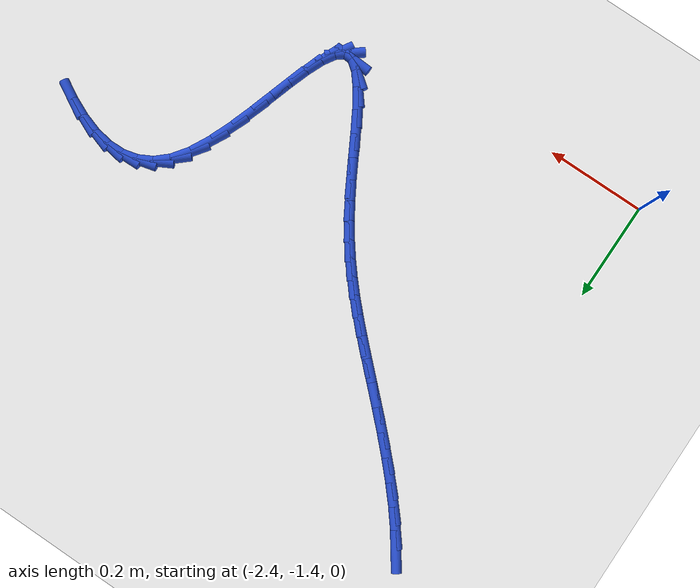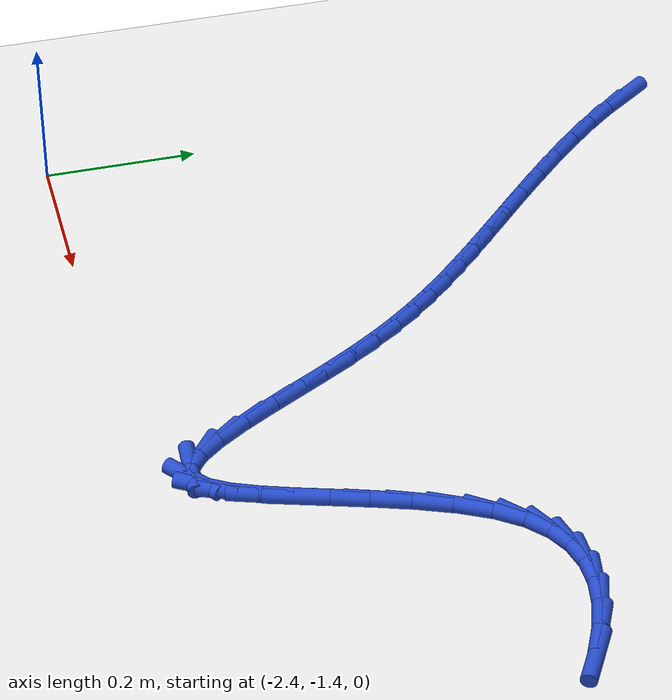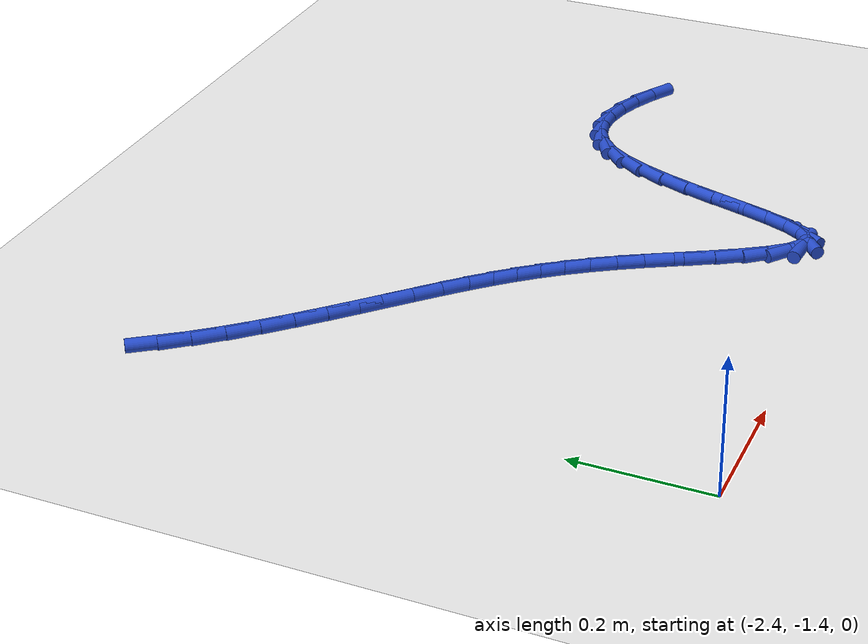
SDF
<sdf version="1.6">
 <world name="default">
  <model name="ground_plane">
   <static>1</static>
   <link name="link">
    <collision name="collision">
     <geometry><plane><normal>0 0 1</normal><size>100 100</size></plane></geometry>
     <surface><friction><ode><mu>100</mu><mu2>50</mu2></ode></friction></surface>
    </collision>
    <visual name="visual">
     <cast_shadows>0</cast_shadows>
     <geometry><plane><normal>0 0 1</normal><size>100 100</size></plane></geometry>
     <material>
      <script><uri>file://media/materials/scripts/gazebo.material</uri><name>Gazebo/WhiteGlow</name></script>
     </material>
    </visual>
   </link>
  </model>
  <model name="line">
   <link name="link_150">
    <pose>-2.373252106462421 -0.6004573252086611 0.01 0 1.57 -0.9528831710784258</pose>
    <collision name="collision">
     <geometry><cylinder><radius>0.01</radius><length>0.08</length></cylinder></geometry>
    </collision>
    <visual name="visual">
     <material>
      <script><name>Gazebo/Blue</name><uri>file://media/materials/scripts/gazebo.material</uri></script>
     </material>
     <geometry><cylinder><radius>0.01</radius><length>0.08</length></cylinder></geometry>
    </visual>
   </link>
   <link name="link_151">
    <pose>-2.3484162396697954 -0.6353998560284155 0.01 0 1.57 -0.8935420552274017</pose>
    <collision name="collision">
     <geometry><cylinder><radius>0.01</radius><length>0.08</length></cylinder></geometry>
    </collision>
    <visual name="visual">
     <material>
      <script><name>Gazebo/Blue</name><uri>file://media/materials/scripts/gazebo.material</uri></script>
     </material>
     <geometry><cylinder><radius>0.01</radius><length>0.08</length></cylinder></geometry>
    </visual>
   </link>
   <link name="link_152">
    <pose>-2.3201256055269526 -0.6705815157713206 0.01 0 1.57 -0.8489820435934535</pose>
    <collision name="collision">
     <geometry><cylinder><radius>0.01</radius><length>0.08</length></cylinder></geometry>
    </collision>
    <visual name="visual">
     <material>
      <script><name>Gazebo/Blue</name><uri>file://media/materials/scripts/gazebo.material</uri></script>
     </material>
     <geometry><cylinder><radius>0.01</radius><length>0.08</length></cylinder></geometry>
    </visual>
   </link>
   <link name="link_153">
    <pose>-2.289208676700361 -0.7057030971934708 0.01 0 1.57 -0.8157331738352898</pose>
    <collision name="collision">
     <geometry><cylinder><radius>0.01</radius><length>0.08</length></cylinder></geometry>
    </collision>
    <visual name="visual">
     <material>
      <script><name>Gazebo/Blue</name><uri>file://media/materials/scripts/gazebo.material</uri></script>
     </material>
     <geometry><cylinder><radius>0.01</radius><length>0.08</length></cylinder></geometry>
    </visual>
   </link>
   <link name="link_154">
    <pose>-2.2564939258564882 -0.7404653930509605 0.01 0 1.57 -0.7915894965317337</pose>
    <collision name="collision">
     <geometry><cylinder><radius>0.01</radius><length>0.08</length></cylinder></geometry>
    </collision>
    <visual name="visual">
     <material>
      <script><name>Gazebo/Blue</name><uri>file://media/materials/scripts/gazebo.material</uri></script>
     </material>
     <geometry><cylinder><radius>0.01</radius><length>0.08</length></cylinder></geometry>
    </visual>
   </link>
   <link name="link_155">
    <pose>-2.222809825661802 -0.7745691960998845 0.01 0 1.57 -0.7752616890763121</pose>
    <collision name="collision">
     <geometry><cylinder><radius>0.01</radius><length>0.08</length></cylinder></geometry>
    </collision>
    <visual name="visual">
     <material>
      <script><name>Gazebo/Blue</name><uri>file://media/materials/scripts/gazebo.material</uri></script>
     </material>
     <geometry><cylinder><radius>0.01</radius><length>0.08</length></cylinder></geometry>
    </visual>
   </link>
   <link name="link_156">
    <pose>-2.1889848487827703 -0.807715299096337 0.01 0 1.57 -0.7662055194218836</pose>
    <collision name="collision">
     <geometry><cylinder><radius>0.01</radius><length>0.08</length></cylinder></geometry>
    </collision>
    <visual name="visual">
     <material>
      <script><name>Gazebo/Blue</name><uri>file://media/materials/scripts/gazebo.material</uri></script>
     </material>
     <geometry><cylinder><radius>0.01</radius><length>0.08</length></cylinder></geometry>
    </visual>
   </link>
   <link name="link_157">
    <pose>-2.1558474678858612 -0.8396044947964126 0.01 0 1.57 -0.764607943255147</pose>
    <collision name="collision">
     <geometry><cylinder><radius>0.01</radius><length>0.08</length></cylinder></geometry>
    </collision>
    <visual name="visual">
     <material>
      <script><name>Gazebo/Blue</name><uri>file://media/materials/scripts/gazebo.material</uri></script>
     </material>
     <geometry><cylinder><radius>0.01</radius><length>0.08</length></cylinder></geometry>
    </visual>
   </link>
   <link name="link_158">
    <pose>-2.1242261556375435 -0.8699375759562062 0.01 0 1.57 -0.7713608393779885</pose>
    <collision name="collision">
     <geometry><cylinder><radius>0.01</radius><length>0.08</length></cylinder></geometry>
    </collision>
    <visual name="visual">
     <material>
      <script><name>Gazebo/Blue</name><uri>file://media/materials/scripts/gazebo.material</uri></script>
     </material>
     <geometry><cylinder><radius>0.01</radius><length>0.08</length></cylinder></geometry>
    </visual>
   </link>
   <link name="link_159">
    <pose>-2.0948640516488317 -0.898486707765192 0.01 0 1.57 -0.7864312028950791</pose>
    <collision name="collision">
     <geometry><cylinder><radius>0.01</radius><length>0.08</length></cylinder></geometry>
    </collision>
    <visual name="visual">
     <material>
      <script><name>Gazebo/Blue</name><uri>file://media/materials/scripts/gazebo.material</uri></script>
     </material>
     <geometry><cylinder><radius>0.01</radius><length>0.08</length></cylinder></geometry>
    </visual>
   </link>
   <link name="link_160">
    <pose>-2.0677614090117453 -0.9256454045290137 0.01 0 1.57 -0.8096889409405165</pose>
    <collision name="collision">
     <geometry><cylinder><radius>0.01</radius><length>0.08</length></cylinder></geometry>
    </collision>
    <visual name="visual">
     <material>
      <script><name>Gazebo/Blue</name><uri>file://media/materials/scripts/gazebo.material</uri></script>
     </material>
     <geometry><cylinder><radius>0.01</radius><length>0.08</length></cylinder></geometry>
    </visual>
   </link>
   <link name="link_161">
    <pose>-2.0425358999949474 -0.9521271705523009 0.01 0 1.57 -0.840801102469207</pose>
    <collision name="collision">
     <geometry><cylinder><radius>0.01</radius><length>0.08</length></cylinder></geometry>
    </collision>
    <visual name="visual">
     <material>
      <script><name>Gazebo/Blue</name><uri>file://media/materials/scripts/gazebo.material</uri></script>
     </material>
     <geometry><cylinder><radius>0.01</radius><length>0.08</length></cylinder></geometry>
    </visual>
   </link>
   <link name="link_162">
    <pose>-2.0188020328541074 -0.9786481565151717 0.01 0 1.57 -0.8782816312573634</pose>
    <collision name="collision">
     <geometry><cylinder><radius>0.01</radius><length>0.08</length></cylinder></geometry>
    </collision>
    <visual name="visual">
     <material>
      <script><name>Gazebo/Blue</name><uri>file://media/materials/scripts/gazebo.material</uri></script>
     </material>
     <geometry><cylinder><radius>0.01</radius><length>0.08</length></cylinder></geometry>
    </visual>
   </link>
   <link name="link_163">
    <pose>-1.9961743158448948 -1.0059245130977446 0.01 0 1.57 -0.9196334773277048</pose>
    <collision name="collision">
     <geometry><cylinder><radius>0.01</radius><length>0.08</length></cylinder></geometry>
    </collision>
    <visual name="visual">
     <material>
      <script><name>Gazebo/Blue</name><uri>file://media/materials/scripts/gazebo.material</uri></script>
     </material>
     <geometry><cylinder><radius>0.01</radius><length>0.08</length></cylinder></geometry>
    </visual>
   </link>
   <link name="link_164">
    <pose>-1.9742672572229785 -1.034672390980138 0.01 0 1.57 -0.9618731485182537</pose>
    <collision name="collision">
     <geometry><cylinder><radius>0.01</radius><length>0.08</length></cylinder></geometry>
    </collision>
    <visual name="visual">
     <material>
      <script><name>Gazebo/Blue</name><uri>file://media/materials/scripts/gazebo.material</uri></script>
     </material>
     <geometry><cylinder><radius>0.01</radius><length>0.08</length></cylinder></geometry>
    </visual>
   </link>
   <link name="link_165">
    <pose>-1.9526953652440289 -1.065607940842471 0.01 0 1.57 -1.002216841543725</pose>
    <collision name="collision">
     <geometry><cylinder><radius>0.01</radius><length>0.08</length></cylinder></geometry>
    </collision>
    <visual name="visual">
     <material>
      <script><name>Gazebo/Blue</name><uri>file://media/materials/scripts/gazebo.material</uri></script>
     </material>
     <geometry><cylinder><radius>0.01</radius><length>0.08</length></cylinder></geometry>
    </visual>
   </link>
   <link name="link_166">
    <pose>-1.9310731481637153 -1.0994473133648615 0.01 0 1.57 -1.0385716733011656</pose>
    <collision name="collision">
     <geometry><cylinder><radius>0.01</radius><length>0.08</length></cylinder></geometry>
    </collision>
    <visual name="visual">
     <material>
      <script><name>Gazebo/Blue</name><uri>file://media/materials/scripts/gazebo.material</uri></script>
     </material>
     <geometry><cylinder><radius>0.01</radius><length>0.08</length></cylinder></geometry>
    </visual>
   </link>
   <link name="link_167">
    <pose>-1.9090164097806421 -1.1369008544767587 0.01 0 1.57 -1.0633929357914582</pose>
    <collision name="collision">
     <geometry><cylinder><radius>0.01</radius><length>0.08</length></cylinder></geometry>
    </collision>
    <visual name="visual">
     <material>
      <script><name>Gazebo/Blue</name><uri>file://media/materials/scripts/gazebo.material</uri></script>
     </material>
     <geometry><cylinder><radius>0.01</radius><length>0.08</length></cylinder></geometry>
    </visual>
   </link>
   <link name="link_168">
    <pose>-1.886376534253599 -1.177623379474849 0.01 0 1.57 -1.0659244511532624</pose>
    <collision name="collision">
     <geometry><cylinder><radius>0.01</radius><length>0.08</length></cylinder></geometry>
    </collision>
    <visual name="visual">
     <material>
      <script><name>Gazebo/Blue</name><uri>file://media/materials/scripts/gazebo.material</uri></script>
     </material>
     <geometry><cylinder><radius>0.01</radius><length>0.08</length></cylinder></geometry>
    </visual>
   </link>
   <link name="link_169">
    <pose>-1.8635125122156426 -1.218995345205227 0.01 0 1.57 -1.0455651673994772</pose>
    <collision name="collision">
     <geometry><cylinder><radius>0.01</radius><length>0.08</length></cylinder></geometry>
    </collision>
    <visual name="visual">
     <material>
      <script><name>Gazebo/Blue</name><uri>file://media/materials/scripts/gazebo.material</uri></script>
     </material>
     <geometry><cylinder><radius>0.01</radius><length>0.08</length></cylinder></geometry>
    </visual>
   </link>
   <link name="link_170">
    <pose>-1.840849310356929 -1.258101599197318 0.01 0 1.57 -0.994713094891718</pose>
    <collision name="collision">
     <geometry><cylinder><radius>0.01</radius><length>0.08</length></cylinder></geometry>
    </collision>
    <visual name="visual">
     <material>
      <script><name>Gazebo/Blue</name><uri>file://media/materials/scripts/gazebo.material</uri></script>
     </material>
     <geometry><cylinder><radius>0.01</radius><length>0.08</length></cylinder></geometry>
    </visual>
   </link>
   <link name="link_171">
    <pose>-1.8188118953676125 -1.2920269889805458 0.01 0 1.57 -0.8884728741638233</pose>
    <collision name="collision">
     <geometry><cylinder><radius>0.01</radius><length>0.08</length></cylinder></geometry>
    </collision>
    <visual name="visual">
     <material>
      <script><name>Gazebo/Blue</name><uri>file://media/materials/scripts/gazebo.material</uri></script>
     </material>
     <geometry><cylinder><radius>0.01</radius><length>0.08</length></cylinder></geometry>
    </visual>
   </link>
   <link name="link_172">
    <pose>-1.7978252339378493 -1.3178563620843355 0.01 0 1.57 -0.6495418686351415</pose>
    <collision name="collision">
     <geometry><cylinder><radius>0.01</radius><length>0.08</length></cylinder></geometry>
    </collision>
    <visual name="visual">
     <material>
      <script><name>Gazebo/Blue</name><uri>file://media/materials/scripts/gazebo.material</uri></script>
     </material>
     <geometry><cylinder><radius>0.01</radius><length>0.08</length></cylinder></geometry>
    </visual>
   </link>
   <link name="link_173">
    <pose>-1.7783142927577935 -1.3326745660381107 0.01 0 1.57 -0.05997570481074168</pose>
    <collision name="collision">
     <geometry><cylinder><radius>0.01</radius><length>0.08</length></cylinder></geometry>
    </collision>
    <visual name="visual">
     <material>
      <script><name>Gazebo/Blue</name><uri>file://media/materials/scripts/gazebo.material</uri></script>
     </material>
     <geometry><cylinder><radius>0.01</radius><length>0.08</length></cylinder></geometry>
    </visual>
   </link>
   <link name="link_174">
    <pose>-1.760674573048976 -1.3337337910057852 0.01 0 1.57 0.6745242304990869</pose>
    <collision name="collision">
     <geometry><cylinder><radius>0.01</radius><length>0.08</length></cylinder></geometry>
    </collision>
    <visual name="visual">
     <material>
      <script><name>Gazebo/Blue</name><uri>file://media/materials/scripts/gazebo.material</uri></script>
     </material>
     <geometry><cylinder><radius>0.01</radius><length>0.08</length></cylinder></geometry>
    </visual>
   </link>
   <link name="link_175">
    <pose>-1.7448146697424232 -1.3210515041078377 0.01 0 1.57 1.0276383787436885</pose>
    <collision name="collision">
     <geometry><cylinder><radius>0.01</radius><length>0.08</length></cylinder></geometry>
    </collision>
    <visual name="visual">
     <material>
      <script><name>Gazebo/Blue</name><uri>file://media/materials/scripts/gazebo.material</uri></script>
     </material>
     <geometry><cylinder><radius>0.01</radius><length>0.08</length></cylinder></geometry>
    </visual>
   </link>
   <link name="link_176">
    <pose>-1.7302433330352203 -1.296916002500289 0.01 0 1.57 1.1775777474080007</pose>
    <collision name="collision">
     <geometry><cylinder><radius>0.01</radius><length>0.08</length></cylinder></geometry>
    </collision>
    <visual name="visual">
     <material>
      <script><name>Gazebo/Blue</name><uri>file://media/materials/scripts/gazebo.material</uri></script>
     </material>
     <geometry><cylinder><radius>0.01</radius><length>0.08</length></cylinder></geometry>
    </visual>
   </link>
   <link name="link_177">
    <pose>-1.7164574720648407 -1.263682832027294 0.01 0 1.57 1.2450351712946282</pose>
    <collision name="collision">
     <geometry><cylinder><radius>0.01</radius><length>0.08</length></cylinder></geometry>
    </collision>
    <visual name="visual">
     <material>
      <script><name>Gazebo/Blue</name><uri>file://media/materials/scripts/gazebo.material</uri></script>
     </material>
     <geometry><cylinder><radius>0.01</radius><length>0.08</length></cylinder></geometry>
    </visual>
   </link>
   <link name="link_178">
    <pose>-1.7029539959687598 -1.2237075385330065 0.01 0 1.57 1.2707665496543994</pose>
    <collision name="collision">
     <geometry><cylinder><radius>0.01</radius><length>0.08</length></cylinder></geometry>
    </collision>
    <visual name="visual">
     <material>
      <script><name>Gazebo/Blue</name><uri>file://media/materials/scripts/gazebo.material</uri></script>
     </material>
     <geometry><cylinder><radius>0.01</radius><length>0.08</length></cylinder></geometry>
    </visual>
   </link>
   <link name="link_179">
    <pose>-1.689229813884453 -1.1793456678615837 0.01 0 1.57 1.2688897531425274</pose>
    <collision name="collision">
     <geometry><cylinder><radius>0.01</radius><length>0.08</length></cylinder></geometry>
    </collision>
    <visual name="visual">
     <material>
      <script><name>Gazebo/Blue</name><uri>file://media/materials/scripts/gazebo.material</uri></script>
     </material>
     <geometry><cylinder><radius>0.01</radius><length>0.08</length></cylinder></geometry>
    </visual>
   </link>
   <link name="link_180">
    <pose>-1.6747818349493946 -1.1329527658571794 0.01 0 1.57 1.2428318397016918</pose>
    <collision name="collision">
     <geometry><cylinder><radius>0.01</radius><length>0.08</length></cylinder></geometry>
    </collision>
    <visual name="visual">
     <material>
      <script><name>Gazebo/Blue</name><uri>file://media/materials/scripts/gazebo.material</uri></script>
     </material>
     <geometry><cylinder><radius>0.01</radius><length>0.08</length></cylinder></geometry>
    </visual>
   </link>
   <link name="link_181">
    <pose>-1.659106968301059 -1.0868843783639488 0.01 0 1.57 1.1893065516251207</pose>
    <collision name="collision">
     <geometry><cylinder><radius>0.01</radius><length>0.08</length></cylinder></geometry>
    </collision>
    <visual name="visual">
     <material>
      <script><name>Gazebo/Blue</name><uri>file://media/materials/scripts/gazebo.material</uri></script>
     </material>
     <geometry><cylinder><radius>0.01</radius><length>0.08</length></cylinder></geometry>
    </visual>
   </link>
   <link name="link_182">
    <pose>-1.6417021230769222 -1.0434960512260472 0.01 0 1.57 1.0975675679062138</pose>
    <collision name="collision">
     <geometry><cylinder><radius>0.01</radius><length>0.08</length></cylinder></geometry>
    </collision>
    <visual name="visual">
     <material>
      <script><name>Gazebo/Blue</name><uri>file://media/materials/scripts/gazebo.material</uri></script>
     </material>
     <geometry><cylinder><radius>0.01</radius><length>0.08</length></cylinder></geometry>
    </visual>
   </link>
   <link name="link_183">
    <pose>-1.6220642084144576 -1.0051433302876296 0.01 0 1.57 0.9462649501896687</pose>
    <collision name="collision">
     <geometry><cylinder><radius>0.01</radius><length>0.08</length></cylinder></geometry>
    </collision>
    <visual name="visual">
     <material>
      <script><name>Gazebo/Blue</name><uri>file://media/materials/scripts/gazebo.material</uri></script>
     </material>
     <geometry><cylinder><radius>0.01</radius><length>0.08</length></cylinder></geometry>
    </visual>
   </link>
   <link name="link_184">
    <pose>-1.5997052192674202 -0.9741224452010816 0.01 0 1.57 0.7339068887760107</pose>
    <collision name="collision">
     <geometry><cylinder><radius>0.01</radius><length>0.08</length></cylinder></geometry>
    </collision>
    <visual name="visual">
     <material>
      <script><name>Gazebo/Blue</name><uri>file://media/materials/scripts/gazebo.material</uri></script>
     </material>
     <geometry><cylinder><radius>0.01</radius><length>0.08</length></cylinder></geometry>
    </visual>
   </link>
   <link name="link_185">
    <pose>-1.5744824244383198 -0.9513720371762953 0.01 0 1.57 0.49060415879970054</pose>
    <collision name="collision">
     <geometry><cylinder><radius>0.01</radius><length>0.08</length></cylinder></geometry>
    </collision>
    <visual name="visual">
     <material>
      <script><name>Gazebo/Blue</name><uri>file://media/materials/scripts/gazebo.material</uri></script>
     </material>
     <geometry><cylinder><radius>0.01</radius><length>0.08</length></cylinder></geometry>
    </visual>
   </link>
   <link name="link_186">
    <pose>-1.5465974248075476 -0.9364768619464835 0.01 0 1.57 0.2428390808629448</pose>
    <collision name="collision">
     <geometry><cylinder><radius>0.01</radius><length>0.08</length></cylinder></geometry>
    </collision>
    <visual name="visual">
     <material>
      <script><name>Gazebo/Blue</name><uri>file://media/materials/scripts/gazebo.material</uri></script>
     </material>
     <geometry><cylinder><radius>0.01</radius><length>0.08</length></cylinder></geometry>
    </visual>
   </link>
   <link name="link_187">
    <pose>-1.5162667187171563 -0.928963099647985 0.01 0 1.57 0.018614889767825948</pose>
    <collision name="collision">
     <geometry><cylinder><radius>0.01</radius><length>0.08</length></cylinder></geometry>
    </collision>
    <visual name="visual">
     <material>
      <script><name>Gazebo/Blue</name><uri>file://media/materials/scripts/gazebo.material</uri></script>
     </material>
     <geometry><cylinder><radius>0.01</radius><length>0.08</length></cylinder></geometry>
    </visual>
   </link>
   <link name="link_188">
    <pose>-1.483706804509199 -0.9283569304171371 0.01 0 1.57 -0.16699146669108175</pose>
    <collision name="collision">
     <geometry><cylinder><radius>0.01</radius><length>0.08</length></cylinder></geometry>
    </collision>
    <visual name="visual">
     <material>
      <script><name>Gazebo/Blue</name><uri>file://media/materials/scripts/gazebo.material</uri></script>
     </material>
     <geometry><cylinder><radius>0.01</radius><length>0.08</length></cylinder></geometry>
    </visual>
   </link>
   <link name="link_189">
    <pose>-1.4491341805257294 -0.934184534390279 0.01 0 1.57 -0.31342805934212253</pose>
    <collision name="collision">
     <geometry><cylinder><radius>0.01</radius><length>0.08</length></cylinder></geometry>
    </collision>
    <visual name="visual">
     <material>
      <script><name>Gazebo/Blue</name><uri>file://media/materials/scripts/gazebo.material</uri></script>
     </material>
     <geometry><cylinder><radius>0.01</radius><length>0.08</length></cylinder></geometry>
    </visual>
   </link>
   <link name="link_190">
    <pose>-1.4127653451088016 -0.9459720917037489 0.01 0 1.57 -0.427159162047163</pose>
    <collision name="collision">
     <geometry><cylinder><radius>0.01</radius><length>0.08</length></cylinder></geometry>
    </collision>
    <visual name="visual">
     <material>
      <script><name>Gazebo/Blue</name><uri>file://media/materials/scripts/gazebo.material</uri></script>
     </material>
     <geometry><cylinder><radius>0.01</radius><length>0.08</length></cylinder></geometry>
    </visual>
   </link>
   <link name="link_191">
    <pose>-1.3748167966004683 -0.9632457824938847 0.01 0 1.57 -0.5157288008221872</pose>
    <collision name="collision">
     <geometry><cylinder><radius>0.01</radius><length>0.08</length></cylinder></geometry>
    </collision>
    <visual name="visual">
     <material>
      <script><name>Gazebo/Blue</name><uri>file://media/materials/scripts/gazebo.material</uri></script>
     </material>
     <geometry><cylinder><radius>0.01</radius><length>0.08</length></cylinder></geometry>
    </visual>
   </link>
  </model>
 </world>
</sdf>
